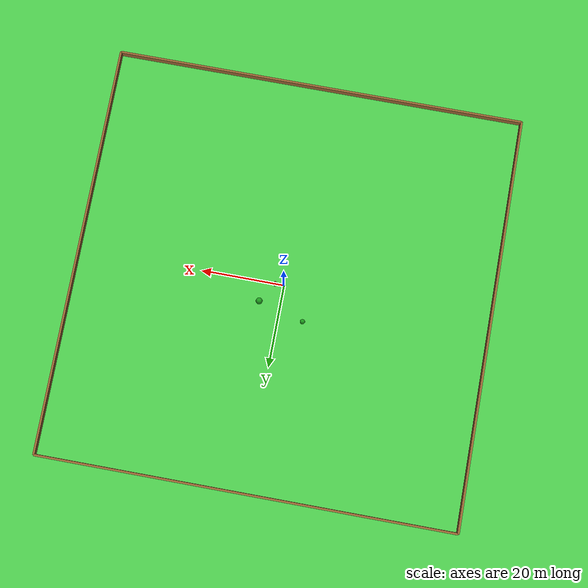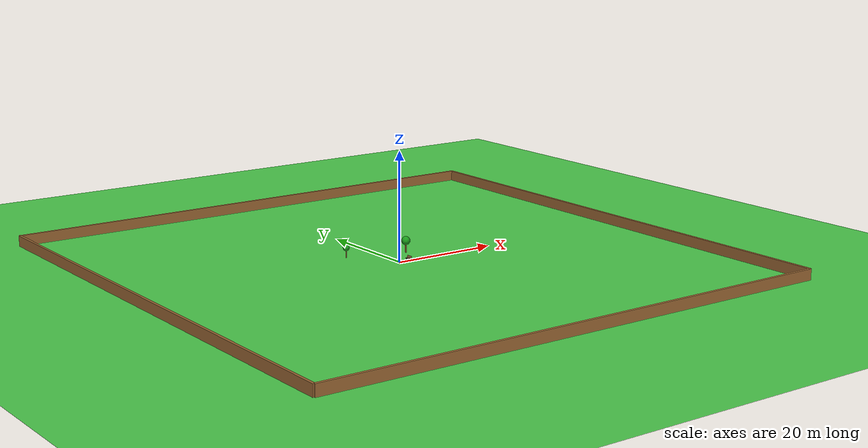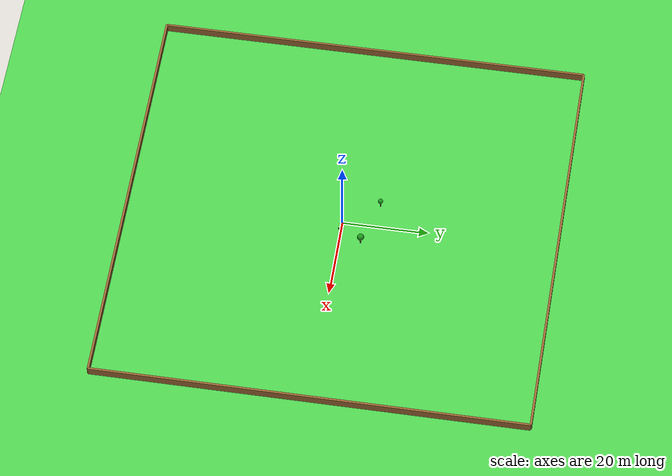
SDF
<?xml version="1.0" ?>
<sdf version="1.9">
  <world name="park_world">

    <!-- SYSTEM PLUGINS - CRITICAL FOR FUNCTIONALITY -->

    <!-- Physics engine -->
    <plugin filename="gz-sim-physics-system"
            name="gz::sim::systems::Physics">
    </plugin>

    <!-- Scene broadcaster for visualization -->
    <plugin filename="gz-sim-scene-broadcaster-system"
            name="gz::sim::systems::SceneBroadcaster">
    </plugin>

    <!-- User commands (spawn, move, etc) -->
    <plugin filename="gz-sim-user-commands-system"
            name="gz::sim::systems::UserCommands">
    </plugin>

    <!-- CRITICAL: Sensors system - enables IMU, LiDAR, Camera -->
    <plugin filename="gz-sim-sensors-system"
            name="gz::sim::systems::Sensors">
    </plugin>

    <!-- WORLD CONFIGURATION -->

    <!-- Basic scene -->
    <gravity>0 0 -9.81</gravity>
    <magnetic_field>6e-6 2.3e-5 -4.2e-5</magnetic_field>
    <scene>
      <sky/>
      <ambient>0.4 0.4 0.4 1</ambient>
      <background>0.7 0.9 1 1</background>
    </scene>

    <!-- Directional sun -->
    <light name="sun" type="directional">
      <pose>0 0 10 0 0 0</pose>
      <cast_shadows>true</cast_shadows>
      <diffuse>1 1 1 1</diffuse>
      <specular>0.1 0.1 0.1 1</specular>
      <attenuation>
        <range>1000</range>
        <constant>0.9</constant>
        <linear>0.01</linear>
        <quadratic>0.001</quadratic>
      </attenuation>
      <direction>-0.5 0.5 -1</direction>
    </light>

    <!-- GROUND AND WALLS -->

    <!-- Ground plane (100 m x 100 m) -->
    <model name="ground_plane">
      <static>true</static>
      <pose>0 0 0 0 0 0</pose>
      <link name="link">
        <collision name="collision">
          <geometry>
            <plane>
              <normal>0 0 1</normal>
              <size>100 100</size>
            </plane>
          </geometry>
          <surface>
            <contact>
              <ode/>
            </contact>
            <friction>
              <ode>
                <mu>1.0</mu>
                <mu2>1.0</mu2>
              </ode>
            </friction>
          </surface>
        </collision>
        <visual name="visual">
          <geometry>
            <plane>
              <normal>0 0 1</normal>
              <size>100 100</size>
            </plane>
          </geometry>
          <material>
            <ambient>0.2 0.5 0.2 1</ambient>
            <diffuse>0.3 0.8 0.3 1</diffuse>
          </material>
        </visual>
      </link>
    </model>

    <!-- Perimeter walls (2 m tall) -->
    <model name="wall_north">
      <static>true</static>
      <pose>0 50 1 0 0 0</pose>
      <link name="link">
        <collision name="collision">
          <geometry><box><size>100 0.5 2</size></box></geometry>
        </collision>
        <visual name="visual">
          <geometry><box><size>100 0.5 2</size></box></geometry>
          <material><diffuse>0.6 0.4 0.2 1</diffuse></material>
        </visual>
      </link>
    </model>

    <model name="wall_south">
      <static>true</static>
      <pose>0 -50 1 0 0 0</pose>
      <link name="link">
        <collision name="collision">
          <geometry><box><size>100 0.5 2</size></box></geometry>
        </collision>
        <visual name="visual">
          <geometry><box><size>100 0.5 2</size></box></geometry>
          <material><diffuse>0.6 0.4 0.2 1</diffuse></material>
        </visual>
      </link>
    </model>

    <model name="wall_east">
      <static>true</static>
      <pose>50 0 1 0 0 1.57079632679</pose>
      <link name="link">
        <collision name="collision">
          <geometry><box><size>100 0.5 2</size></box></geometry>
        </collision>
        <visual name="visual">
          <geometry><box><size>100 0.5 2</size></box></geometry>
          <material><diffuse>0.6 0.4 0.2 1</diffuse></material>
        </visual>
      </link>
    </model>

    <model name="wall_west">
      <static>true</static>
      <pose>-50 0 1 0 0 1.57079632679</pose>
      <link name="link">
        <collision name="collision">
          <geometry><box><size>100 0.5 2</size></box></geometry>
        </collision>
        <visual name="visual">
          <geometry><box><size>100 0.5 2</size></box></geometry>
          <material><diffuse>0.6 0.4 0.2 1</diffuse></material>
        </visual>
      </link>
    </model>

    <!-- PARK DECORATIONS -->

    <!-- Simple tree model (cylinder trunk + sphere canopy) -->
    <model name="tree_1">
      <static>true</static>
      <pose>5 5 0 0 0 0</pose>
      <link name="link">
        <!-- Trunk -->
        <collision name="trunk_col">
          <geometry><cylinder><radius>0.15</radius><length>2.0</length></cylinder></geometry>
          <pose>0 0 1.0 0 0 0</pose>
        </collision>
        <visual name="trunk_vis">
          <geometry><cylinder><radius>0.15</radius><length>2.0</length></cylinder></geometry>
          <pose>0 0 1.0 0 0 0</pose>
          <material><diffuse>0.4 0.25 0.1 1</diffuse></material>
        </visual>
        <!-- Canopy -->
        <collision name="canopy_col">
          <geometry><sphere><radius>0.8</radius></sphere></geometry>
          <pose>0 0 2.2 0 0 0</pose>
        </collision>
        <visual name="canopy_vis">
          <geometry><sphere><radius>0.8</radius></sphere></geometry>
          <pose>0 0 2.2 0 0 0</pose>
          <material><diffuse>0.1 0.6 0.1 1</diffuse></material>
        </visual>
      </link>
    </model>

    <!-- Another tree -->
    <model name="tree_2">
      <static>true</static>
      <pose>-6 8 0 0 0 0</pose>
      <link name="link">
        <collision name="trunk_col"><geometry><cylinder><radius>0.12</radius><length>1.6</length></cylinder></geometry><pose>0 0 0.8 0 0 0</pose></collision>
        <visual name="trunk_vis"><geometry><cylinder><radius>0.12</radius><length>1.6</length></cylinder></geometry><pose>0 0 0.8 0 0 0</pose><material><diffuse>0.4 0.25 0.1 1</diffuse></material></visual>
        <collision name="canopy_col"><geometry><sphere><radius>0.6</radius></sphere></geometry><pose>0 0 1.9 0 0 0</pose></collision>
        <visual name="canopy_vis"><geometry><sphere><radius>0.6</radius></sphere></geometry><pose>0 0 1.9 0 0 0</pose><material><diffuse>0.1 0.6 0.1 1</diffuse></material></visual>
      </link>
    </model>

    <!-- Simple park bench (all boxes) -->
    <model name="bench_1">
      <static>true</static>
      <pose>2 0 0 0 0 1.57079632679</pose>
      <link name="link">
        <!-- Seat -->
        <collision name="seat_col">
          <geometry><box><size>1.2 0.4 0.05</size></box></geometry>
          <pose>0 0 0.45 0 0 0</pose>
        </collision>
        <visual name="seat_vis">
          <geometry><box><size>1.2 0.4 0.05</size></box></geometry>
          <pose>0 0 0.45 0 0 0</pose>
          <material><diffuse>0.5 0.35 0.2 1</diffuse></material>
        </visual>

        <!-- Backrest -->
        <collision name="back_col">
          <geometry><box><size>1.2 0.05 0.4</size></box></geometry>
          <pose>0 -0.175 0.7 0.35 0 0</pose>
        </collision>
        <visual name="back_vis">
          <geometry><box><size>1.2 0.05 0.4</size></box></geometry>
          <pose>0 -0.175 0.7 0.35 0 0</pose>
          <material><diffuse>0.5 0.35 0.2 1</diffuse></material>
        </visual>

        <!-- Legs -->
        <collision name="leg1_col"><geometry><box><size>0.05 0.35 0.45</size></box></geometry><pose>-0.5 0 0.225 0 0 0</pose></collision>
        <visual name="leg1_vis"><geometry><box><size>0.05 0.35 0.45</size></box></geometry><pose>-0.5 0 0.225 0 0 0</pose><material><diffuse>0.2 0.2 0.2 1</diffuse></material></visual>

        <collision name="leg2_col"><geometry><box><size>0.05 0.35 0.45</size></box></geometry><pose>0.5 0 0.225 0 0 0</pose></collision>
        <visual name="leg2_vis"><geometry><box><size>0.05 0.35 0.45</size></box></geometry><pose>0.5 0 0.225 0 0 0</pose><material><diffuse>0.2 0.2 0.2 1</diffuse></material></visual>
      </link>
    </model>

  </world>
</sdf>
